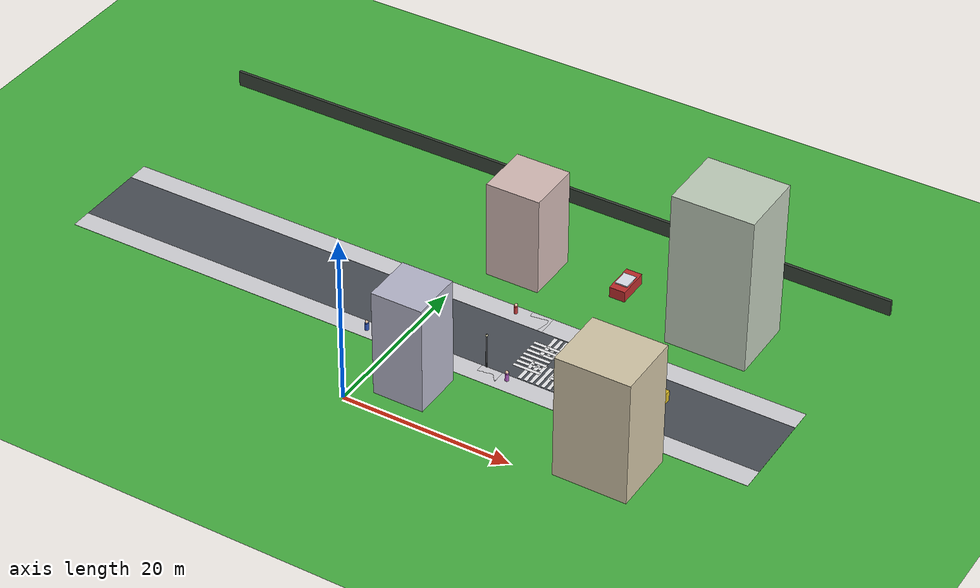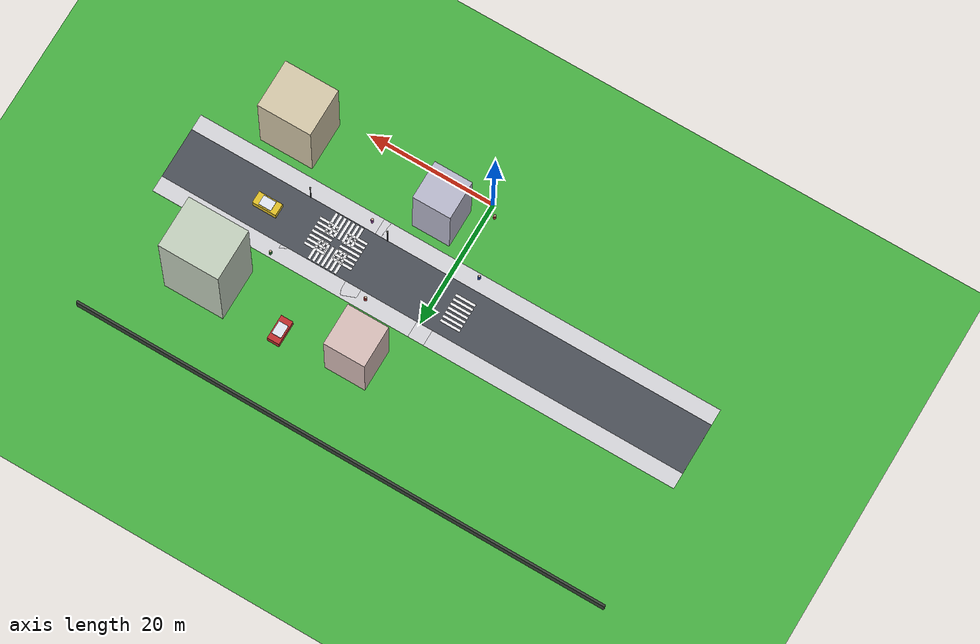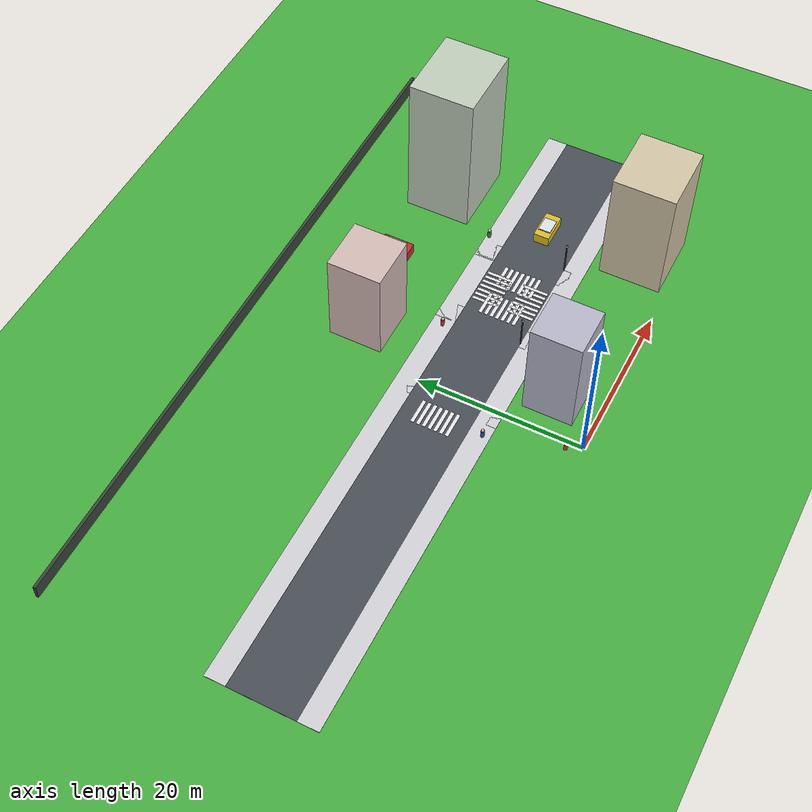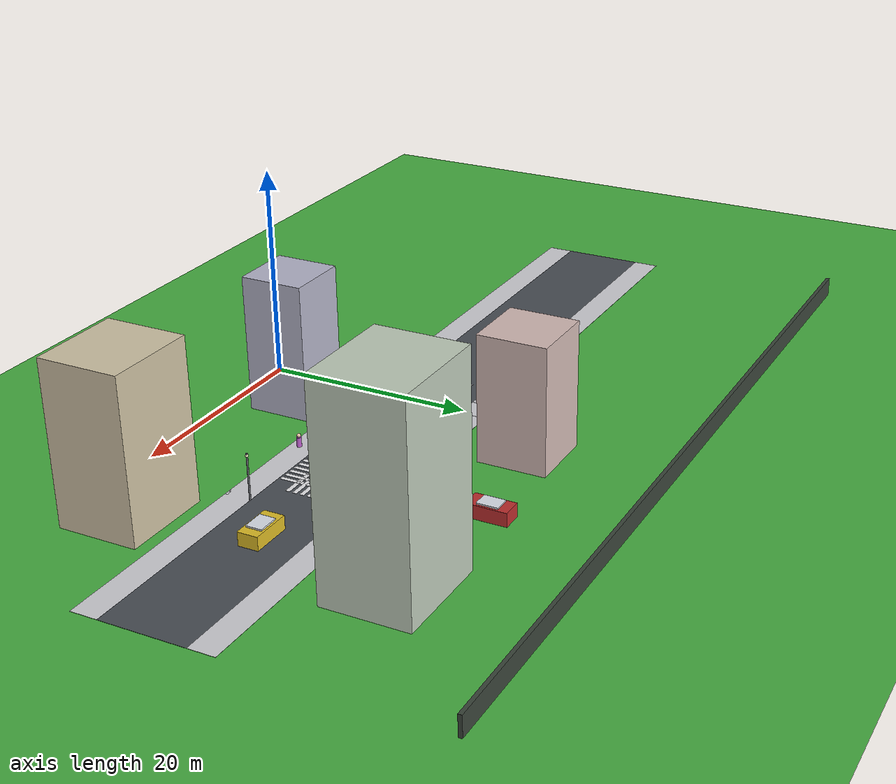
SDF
<sdf version="1.9">
 <world name="city_second">
  <model name="ground_plane">
   <static>true</static>
   <link name="link">
    <collision name="collision">
     <geometry><plane><normal>0 0 1</normal><size>300 300</size></plane></geometry>
    </collision>
    <visual name="visual">
     <geometry><plane><normal>0 0 1</normal><size>300 300</size></plane></geometry>
     <material>
      <ambient>0.28 0.69 0.26 1</ambient>
      <diffuse>0.28 0.69 0.26 1</diffuse>
      <specular>0.03 0.03 0.03 1</specular>
     </material>
    </visual>
   </link>
  </model>
  <model name="road_h_2">
   <static>true</static>
   <pose>0 16.0 0.01 0 0 0.0</pose>
   <link name="link">
    <collision name="collision"><geometry><box><size>84 8.0 0.02</size></box></geometry></collision>
    <visual name="visual">
     <geometry><box><size>84 8.0 0.02</size></box></geometry>
     <material>
      <ambient>0.29 0.31 0.34 1</ambient>
      <diffuse>0.29 0.31 0.34 1</diffuse>
      <specular>0.03 0.03 0.03 1</specular>
     </material>
    </visual>
   </link>
  </model>
  <model name="sidewalk_h_2_south">
   <static>true</static>
   <pose>0 10.75 0.015 0 0 0.0</pose>
   <link name="link">
    <collision name="collision"><geometry><box><size>84 2.5 0.02</size></box></geometry></collision>
    <visual name="visual">
     <geometry><box><size>84 2.5 0.02</size></box></geometry>
     <material>
      <ambient>0.83 0.83 0.85 1</ambient>
      <diffuse>0.83 0.83 0.85 1</diffuse>
      <specular>0.03 0.03 0.03 1</specular>
     </material>
    </visual>
   </link>
  </model>
  <model name="sidewalk_h_2_north">
   <static>true</static>
   <pose>0 21.25 0.015 0 0 0.0</pose>
   <link name="link">
    <collision name="collision"><geometry><box><size>84 2.5 0.02</size></box></geometry></collision>
    <visual name="visual">
     <geometry><box><size>84 2.5 0.02</size></box></geometry>
     <material>
      <ambient>0.83 0.83 0.85 1</ambient>
      <diffuse>0.83 0.83 0.85 1</diffuse>
      <specular>0.03 0.03 0.03 1</specular>
     </material>
    </visual>
   </link>
  </model>
  <model name="corner_sidewalk_1_2_3">
   <static>true</static>
   <pose>-0.75 10.75 0.015 0 0 0.0</pose>
   <link name="link">
    <collision name="collision"><geometry><box><size>2.5 2.5 0.02</size></box></geometry></collision>
    <visual name="visual">
     <geometry><box><size>2.5 2.5 0.02</size></box></geometry>
     <material>
      <ambient>0.83 0.83 0.85 1</ambient>
      <diffuse>0.83 0.83 0.85 1</diffuse>
      <specular>0.03 0.03 0.03 1</specular>
     </material>
    </visual>
   </link>
  </model>
  <model name="corner_sidewalk_1_2_4">
   <static>true</static>
   <pose>-0.75 21.25 0.015 0 0 0.0</pose>
   <link name="link">
    <collision name="collision"><geometry><box><size>2.5 2.5 0.02</size></box></geometry></collision>
    <visual name="visual">
     <geometry><box><size>2.5 2.5 0.02</size></box></geometry>
     <material>
      <ambient>0.83 0.83 0.85 1</ambient>
      <diffuse>0.83 0.83 0.85 1</diffuse>
      <specular>0.03 0.03 0.03 1</specular>
     </material>
    </visual>
   </link>
  </model>
  <model name="corner_sidewalk_2_2_1">
   <static>true</static>
   <pose>10.75 10.75 0.015 0 0 0.0</pose>
   <link name="link">
    <collision name="collision"><geometry><box><size>2.5 2.5 0.02</size></box></geometry></collision>
    <visual name="visual">
     <geometry><box><size>2.5 2.5 0.02</size></box></geometry>
     <material>
      <ambient>0.83 0.83 0.85 1</ambient>
      <diffuse>0.83 0.83 0.85 1</diffuse>
      <specular>0.03 0.03 0.03 1</specular>
     </material>
    </visual>
   </link>
  </model>
  <model name="corner_sidewalk_2_2_2">
   <static>true</static>
   <pose>10.75 21.25 0.015 0 0 0.0</pose>
   <link name="link">
    <collision name="collision"><geometry><box><size>2.5 2.5 0.02</size></box></geometry></collision>
    <visual name="visual">
     <geometry><box><size>2.5 2.5 0.02</size></box></geometry>
     <material>
      <ambient>0.83 0.83 0.85 1</ambient>
      <diffuse>0.83 0.83 0.85 1</diffuse>
      <specular>0.03 0.03 0.03 1</specular>
     </material>
    </visual>
   </link>
  </model>
  <model name="corner_sidewalk_2_2_3">
   <static>true</static>
   <pose>21.25 10.75 0.015 0 0 0.0</pose>
   <link name="link">
    <collision name="collision"><geometry><box><size>2.5 2.5 0.02</size></box></geometry></collision>
    <visual name="visual">
     <geometry><box><size>2.5 2.5 0.02</size></box></geometry>
     <material>
      <ambient>0.83 0.83 0.85 1</ambient>
      <diffuse>0.83 0.83 0.85 1</diffuse>
      <specular>0.03 0.03 0.03 1</specular>
     </material>
    </visual>
   </link>
  </model>
  <model name="corner_sidewalk_2_2_4">
   <static>true</static>
   <pose>21.25 21.25 0.015 0 0 0.0</pose>
   <link name="link">
    <collision name="collision"><geometry><box><size>2.5 2.5 0.02</size></box></geometry></collision>
    <visual name="visual">
     <geometry><box><size>2.5 2.5 0.02</size></box></geometry>
     <material>
      <ambient>0.83 0.83 0.85 1</ambient>
      <diffuse>0.83 0.83 0.85 1</diffuse>
      <specular>0.03 0.03 0.03 1</specular>
     </material>
    </visual>
   </link>
  </model>
  <model name="crosswalk_v_1_2_east_1">
   <static>true</static>
   <pose>-3.75 13.9 0.017 0 0 0.0</pose>
   <link name="link">
    <collision name="collision"><geometry><box><size>3.2 0.42 0.01</size></box></geometry></collision>
    <visual name="visual">
     <geometry><box><size>3.2 0.42 0.01</size></box></geometry>
     <material>
      <ambient>0.92 0.92 0.93 1</ambient>
      <diffuse>0.92 0.92 0.93 1</diffuse>
      <specular>0.03 0.03 0.03 1</specular>
     </material>
    </visual>
   </link>
  </model>
  <model name="crosswalk_v_1_2_east_2">
   <static>true</static>
   <pose>-3.75 14.6 0.017 0 0 0.0</pose>
   <link name="link">
    <collision name="collision"><geometry><box><size>3.2 0.42 0.01</size></box></geometry></collision>
    <visual name="visual">
     <geometry><box><size>3.2 0.42 0.01</size></box></geometry>
     <material>
      <ambient>0.92 0.92 0.93 1</ambient>
      <diffuse>0.92 0.92 0.93 1</diffuse>
      <specular>0.03 0.03 0.03 1</specular>
     </material>
    </visual>
   </link>
  </model>
  <model name="crosswalk_v_1_2_east_3">
   <static>true</static>
   <pose>-3.75 15.3 0.017 0 0 0.0</pose>
   <link name="link">
    <collision name="collision"><geometry><box><size>3.2 0.42 0.01</size></box></geometry></collision>
    <visual name="visual">
     <geometry><box><size>3.2 0.42 0.01</size></box></geometry>
     <material>
      <ambient>0.92 0.92 0.93 1</ambient>
      <diffuse>0.92 0.92 0.93 1</diffuse>
      <specular>0.03 0.03 0.03 1</specular>
     </material>
    </visual>
   </link>
  </model>
  <model name="crosswalk_v_1_2_east_4">
   <static>true</static>
   <pose>-3.75 16.0 0.017 0 0 0.0</pose>
   <link name="link">
    <collision name="collision"><geometry><box><size>3.2 0.42 0.01</size></box></geometry></collision>
    <visual name="visual">
     <geometry><box><size>3.2 0.42 0.01</size></box></geometry>
     <material>
      <ambient>0.92 0.92 0.93 1</ambient>
      <diffuse>0.92 0.92 0.93 1</diffuse>
      <specular>0.03 0.03 0.03 1</specular>
     </material>
    </visual>
   </link>
  </model>
  <model name="crosswalk_v_1_2_east_5">
   <static>true</static>
   <pose>-3.75 16.7 0.017 0 0 0.0</pose>
   <link name="link">
    <collision name="collision"><geometry><box><size>3.2 0.42 0.01</size></box></geometry></collision>
    <visual name="visual">
     <geometry><box><size>3.2 0.42 0.01</size></box></geometry>
     <material>
      <ambient>0.92 0.92 0.93 1</ambient>
      <diffuse>0.92 0.92 0.93 1</diffuse>
      <specular>0.03 0.03 0.03 1</specular>
     </material>
    </visual>
   </link>
  </model>
  <model name="crosswalk_v_1_2_east_6">
   <static>true</static>
   <pose>-3.75 17.4 0.017 0 0 0.0</pose>
   <link name="link">
    <collision name="collision"><geometry><box><size>3.2 0.42 0.01</size></box></geometry></collision>
    <visual name="visual">
     <geometry><box><size>3.2 0.42 0.01</size></box></geometry>
     <material>
      <ambient>0.92 0.92 0.93 1</ambient>
      <diffuse>0.92 0.92 0.93 1</diffuse>
      <specular>0.03 0.03 0.03 1</specular>
     </material>
    </visual>
   </link>
  </model>
  <model name="crosswalk_v_1_2_east_7">
   <static>true</static>
   <pose>-3.75 18.1 0.017 0 0 0.0</pose>
   <link name="link">
    <collision name="collision"><geometry><box><size>3.2 0.42 0.01</size></box></geometry></collision>
    <visual name="visual">
     <geometry><box><size>3.2 0.42 0.01</size></box></geometry>
     <material>
      <ambient>0.92 0.92 0.93 1</ambient>
      <diffuse>0.92 0.92 0.93 1</diffuse>
      <specular>0.03 0.03 0.03 1</specular>
     </material>
    </visual>
   </link>
  </model>
  <model name="crosswalk_h_2_2_south_1">
   <static>true</static>
   <pose>13.9 13.75 0.017 0 0 0.0</pose>
   <link name="link">
    <collision name="collision"><geometry><box><size>0.42 3.2 0.01</size></box></geometry></collision>
    <visual name="visual">
     <geometry><box><size>0.42 3.2 0.01</size></box></geometry>
     <material>
      <ambient>0.92 0.92 0.93 1</ambient>
      <diffuse>0.92 0.92 0.93 1</diffuse>
      <specular>0.03 0.03 0.03 1</specular>
     </material>
    </visual>
   </link>
  </model>
  <model name="crosswalk_h_2_2_south_2">
   <static>true</static>
   <pose>14.6 13.75 0.017 0 0 0.0</pose>
   <link name="link">
    <collision name="collision"><geometry><box><size>0.42 3.2 0.01</size></box></geometry></collision>
    <visual name="visual">
     <geometry><box><size>0.42 3.2 0.01</size></box></geometry>
     <material>
      <ambient>0.92 0.92 0.93 1</ambient>
      <diffuse>0.92 0.92 0.93 1</diffuse>
      <specular>0.03 0.03 0.03 1</specular>
     </material>
    </visual>
   </link>
  </model>
  <model name="crosswalk_h_2_2_south_3">
   <static>true</static>
   <pose>15.3 13.75 0.017 0 0 0.0</pose>
   <link name="link">
    <collision name="collision"><geometry><box><size>0.42 3.2 0.01</size></box></geometry></collision>
    <visual name="visual">
     <geometry><box><size>0.42 3.2 0.01</size></box></geometry>
     <material>
      <ambient>0.92 0.92 0.93 1</ambient>
      <diffuse>0.92 0.92 0.93 1</diffuse>
      <specular>0.03 0.03 0.03 1</specular>
     </material>
    </visual>
   </link>
  </model>
  <model name="crosswalk_h_2_2_south_4">
   <static>true</static>
   <pose>16.0 13.75 0.017 0 0 0.0</pose>
   <link name="link">
    <collision name="collision"><geometry><box><size>0.42 3.2 0.01</size></box></geometry></collision>
    <visual name="visual">
     <geometry><box><size>0.42 3.2 0.01</size></box></geometry>
     <material>
      <ambient>0.92 0.92 0.93 1</ambient>
      <diffuse>0.92 0.92 0.93 1</diffuse>
      <specular>0.03 0.03 0.03 1</specular>
     </material>
    </visual>
   </link>
  </model>
  <model name="crosswalk_h_2_2_south_5">
   <static>true</static>
   <pose>16.7 13.75 0.017 0 0 0.0</pose>
   <link name="link">
    <collision name="collision"><geometry><box><size>0.42 3.2 0.01</size></box></geometry></collision>
    <visual name="visual">
     <geometry><box><size>0.42 3.2 0.01</size></box></geometry>
     <material>
      <ambient>0.92 0.92 0.93 1</ambient>
      <diffuse>0.92 0.92 0.93 1</diffuse>
      <specular>0.03 0.03 0.03 1</specular>
     </material>
    </visual>
   </link>
  </model>
  <model name="crosswalk_h_2_2_south_6">
   <static>true</static>
   <pose>17.4 13.75 0.017 0 0 0.0</pose>
   <link name="link">
    <collision name="collision"><geometry><box><size>0.42 3.2 0.01</size></box></geometry></collision>
    <visual name="visual">
     <geometry><box><size>0.42 3.2 0.01</size></box></geometry>
     <material>
      <ambient>0.92 0.92 0.93 1</ambient>
      <diffuse>0.92 0.92 0.93 1</diffuse>
      <specular>0.03 0.03 0.03 1</specular>
     </material>
    </visual>
   </link>
  </model>
  <model name="crosswalk_h_2_2_south_7">
   <static>true</static>
   <pose>18.1 13.75 0.017 0 0 0.0</pose>
   <link name="link">
    <collision name="collision"><geometry><box><size>0.42 3.2 0.01</size></box></geometry></collision>
    <visual name="visual">
     <geometry><box><size>0.42 3.2 0.01</size></box></geometry>
     <material>
      <ambient>0.92 0.92 0.93 1</ambient>
      <diffuse>0.92 0.92 0.93 1</diffuse>
      <specular>0.03 0.03 0.03 1</specular>
     </material>
    </visual>
   </link>
  </model>
  <model name="crosswalk_h_2_2_north_1">
   <static>true</static>
   <pose>13.9 18.25 0.017 0 0 0.0</pose>
   <link name="link">
    <collision name="collision"><geometry><box><size>0.42 3.2 0.01</size></box></geometry></collision>
    <visual name="visual">
     <geometry><box><size>0.42 3.2 0.01</size></box></geometry>
     <material>
      <ambient>0.92 0.92 0.93 1</ambient>
      <diffuse>0.92 0.92 0.93 1</diffuse>
      <specular>0.03 0.03 0.03 1</specular>
     </material>
    </visual>
   </link>
  </model>
  <model name="crosswalk_h_2_2_north_2">
   <static>true</static>
   <pose>14.6 18.25 0.017 0 0 0.0</pose>
   <link name="link">
    <collision name="collision"><geometry><box><size>0.42 3.2 0.01</size></box></geometry></collision>
    <visual name="visual">
     <geometry><box><size>0.42 3.2 0.01</size></box></geometry>
     <material>
      <ambient>0.92 0.92 0.93 1</ambient>
      <diffuse>0.92 0.92 0.93 1</diffuse>
      <specular>0.03 0.03 0.03 1</specular>
     </material>
    </visual>
   </link>
  </model>
  <model name="crosswalk_h_2_2_north_3">
   <static>true</static>
   <pose>15.3 18.25 0.017 0 0 0.0</pose>
   <link name="link">
    <collision name="collision"><geometry><box><size>0.42 3.2 0.01</size></box></geometry></collision>
    <visual name="visual">
     <geometry><box><size>0.42 3.2 0.01</size></box></geometry>
     <material>
      <ambient>0.92 0.92 0.93 1</ambient>
      <diffuse>0.92 0.92 0.93 1</diffuse>
      <specular>0.03 0.03 0.03 1</specular>
     </material>
    </visual>
   </link>
  </model>
  <model name="crosswalk_h_2_2_north_4">
   <static>true</static>
   <pose>16.0 18.25 0.017 0 0 0.0</pose>
   <link name="link">
    <collision name="collision"><geometry><box><size>0.42 3.2 0.01</size></box></geometry></collision>
    <visual name="visual">
     <geometry><box><size>0.42 3.2 0.01</size></box></geometry>
     <material>
      <ambient>0.92 0.92 0.93 1</ambient>
      <diffuse>0.92 0.92 0.93 1</diffuse>
      <specular>0.03 0.03 0.03 1</specular>
     </material>
    </visual>
   </link>
  </model>
  <model name="crosswalk_h_2_2_north_5">
   <static>true</static>
   <pose>16.7 18.25 0.017 0 0 0.0</pose>
   <link name="link">
    <collision name="collision"><geometry><box><size>0.42 3.2 0.01</size></box></geometry></collision>
    <visual name="visual">
     <geometry><box><size>0.42 3.2 0.01</size></box></geometry>
     <material>
      <ambient>0.92 0.92 0.93 1</ambient>
      <diffuse>0.92 0.92 0.93 1</diffuse>
      <specular>0.03 0.03 0.03 1</specular>
     </material>
    </visual>
   </link>
  </model>
  <model name="crosswalk_h_2_2_north_6">
   <static>true</static>
   <pose>17.4 18.25 0.017 0 0 0.0</pose>
   <link name="link">
    <collision name="collision"><geometry><box><size>0.42 3.2 0.01</size></box></geometry></collision>
    <visual name="visual">
     <geometry><box><size>0.42 3.2 0.01</size></box></geometry>
     <material>
      <ambient>0.92 0.92 0.93 1</ambient>
      <diffuse>0.92 0.92 0.93 1</diffuse>
      <specular>0.03 0.03 0.03 1</specular>
     </material>
    </visual>
   </link>
  </model>
  <model name="crosswalk_h_2_2_north_7">
   <static>true</static>
   <pose>18.1 18.25 0.017 0 0 0.0</pose>
   <link name="link">
    <collision name="collision"><geometry><box><size>0.42 3.2 0.01</size></box></geometry></collision>
    <visual name="visual">
     <geometry><box><size>0.42 3.2 0.01</size></box></geometry>
     <material>
      <ambient>0.92 0.92 0.93 1</ambient>
      <diffuse>0.92 0.92 0.93 1</diffuse>
      <specular>0.03 0.03 0.03 1</specular>
     </material>
    </visual>
   </link>
  </model>
  <model name="crosswalk_v_2_2_west_1">
   <static>true</static>
   <pose>13.75 13.9 0.017 0 0 0.0</pose>
   <link name="link">
    <collision name="collision"><geometry><box><size>3.2 0.42 0.01</size></box></geometry></collision>
    <visual name="visual">
     <geometry><box><size>3.2 0.42 0.01</size></box></geometry>
     <material>
      <ambient>0.92 0.92 0.93 1</ambient>
      <diffuse>0.92 0.92 0.93 1</diffuse>
      <specular>0.03 0.03 0.03 1</specular>
     </material>
    </visual>
   </link>
  </model>
  <model name="crosswalk_v_2_2_west_2">
   <static>true</static>
   <pose>13.75 14.6 0.017 0 0 0.0</pose>
   <link name="link">
    <collision name="collision"><geometry><box><size>3.2 0.42 0.01</size></box></geometry></collision>
    <visual name="visual">
     <geometry><box><size>3.2 0.42 0.01</size></box></geometry>
     <material>
      <ambient>0.92 0.92 0.93 1</ambient>
      <diffuse>0.92 0.92 0.93 1</diffuse>
      <specular>0.03 0.03 0.03 1</specular>
     </material>
    </visual>
   </link>
  </model>
  <model name="crosswalk_v_2_2_west_3">
   <static>true</static>
   <pose>13.75 15.3 0.017 0 0 0.0</pose>
   <link name="link">
    <collision name="collision"><geometry><box><size>3.2 0.42 0.01</size></box></geometry></collision>
    <visual name="visual">
     <geometry><box><size>3.2 0.42 0.01</size></box></geometry>
     <material>
      <ambient>0.92 0.92 0.93 1</ambient>
      <diffuse>0.92 0.92 0.93 1</diffuse>
      <specular>0.03 0.03 0.03 1</specular>
     </material>
    </visual>
   </link>
  </model>
  <model name="crosswalk_v_2_2_west_4">
   <static>true</static>
   <pose>13.75 16.0 0.017 0 0 0.0</pose>
   <link name="link">
    <collision name="collision"><geometry><box><size>3.2 0.42 0.01</size></box></geometry></collision>
    <visual name="visual">
     <geometry><box><size>3.2 0.42 0.01</size></box></geometry>
     <material>
      <ambient>0.92 0.92 0.93 1</ambient>
      <diffuse>0.92 0.92 0.93 1</diffuse>
      <specular>0.03 0.03 0.03 1</specular>
     </material>
    </visual>
   </link>
  </model>
  <model name="crosswalk_v_2_2_west_5">
   <static>true</static>
   <pose>13.75 16.7 0.017 0 0 0.0</pose>
   <link name="link">
    <collision name="collision"><geometry><box><size>3.2 0.42 0.01</size></box></geometry></collision>
    <visual name="visual">
     <geometry><box><size>3.2 0.42 0.01</size></box></geometry>
     <material>
      <ambient>0.92 0.92 0.93 1</ambient>
      <diffuse>0.92 0.92 0.93 1</diffuse>
      <specular>0.03 0.03 0.03 1</specular>
     </material>
    </visual>
   </link>
  </model>
  <model name="crosswalk_v_2_2_west_6">
   <static>true</static>
   <pose>13.75 17.4 0.017 0 0 0.0</pose>
   <link name="link">
    <collision name="collision"><geometry><box><size>3.2 0.42 0.01</size></box></geometry></collision>
    <visual name="visual">
     <geometry><box><size>3.2 0.42 0.01</size></box></geometry>
     <material>
      <ambient>0.92 0.92 0.93 1</ambient>
      <diffuse>0.92 0.92 0.93 1</diffuse>
      <specular>0.03 0.03 0.03 1</specular>
     </material>
    </visual>
   </link>
  </model>
  <model name="crosswalk_v_2_2_west_7">
   <static>true</static>
   <pose>13.75 18.1 0.017 0 0 0.0</pose>
   <link name="link">
    <collision name="collision"><geometry><box><size>3.2 0.42 0.01</size></box></geometry></collision>
    <visual name="visual">
     <geometry><box><size>3.2 0.42 0.01</size></box></geometry>
     <material>
      <ambient>0.92 0.92 0.93 1</ambient>
      <diffuse>0.92 0.92 0.93 1</diffuse>
      <specular>0.03 0.03 0.03 1</specular>
     </material>
    </visual>
   </link>
  </model>
  <model name="crosswalk_v_2_2_east_1">
   <static>true</static>
   <pose>18.25 13.9 0.017 0 0 0.0</pose>
   <link name="link">
    <collision name="collision"><geometry><box><size>3.2 0.42 0.01</size></box></geometry></collision>
    <visual name="visual">
     <geometry><box><size>3.2 0.42 0.01</size></box></geometry>
     <material>
      <ambient>0.92 0.92 0.93 1</ambient>
      <diffuse>0.92 0.92 0.93 1</diffuse>
      <specular>0.03 0.03 0.03 1</specular>
     </material>
    </visual>
   </link>
  </model>
  <model name="crosswalk_v_2_2_east_2">
   <static>true</static>
   <pose>18.25 14.6 0.017 0 0 0.0</pose>
   <link name="link">
    <collision name="collision"><geometry><box><size>3.2 0.42 0.01</size></box></geometry></collision>
    <visual name="visual">
     <geometry><box><size>3.2 0.42 0.01</size></box></geometry>
     <material>
      <ambient>0.92 0.92 0.93 1</ambient>
      <diffuse>0.92 0.92 0.93 1</diffuse>
      <specular>0.03 0.03 0.03 1</specular>
     </material>
    </visual>
   </link>
  </model>
  <model name="crosswalk_v_2_2_east_3">
   <static>true</static>
   <pose>18.25 15.3 0.017 0 0 0.0</pose>
   <link name="link">
    <collision name="collision"><geometry><box><size>3.2 0.42 0.01</size></box></geometry></collision>
    <visual name="visual">
     <geometry><box><size>3.2 0.42 0.01</size></box></geometry>
     <material>
      <ambient>0.92 0.92 0.93 1</ambient>
      <diffuse>0.92 0.92 0.93 1</diffuse>
      <specular>0.03 0.03 0.03 1</specular>
     </material>
    </visual>
   </link>
  </model>
  <model name="crosswalk_v_2_2_east_4">
   <static>true</static>
   <pose>18.25 16.0 0.017 0 0 0.0</pose>
   <link name="link">
    <collision name="collision"><geometry><box><size>3.2 0.42 0.01</size></box></geometry></collision>
    <visual name="visual">
     <geometry><box><size>3.2 0.42 0.01</size></box></geometry>
     <material>
      <ambient>0.92 0.92 0.93 1</ambient>
      <diffuse>0.92 0.92 0.93 1</diffuse>
      <specular>0.03 0.03 0.03 1</specular>
     </material>
    </visual>
   </link>
  </model>
  <model name="crosswalk_v_2_2_east_5">
   <static>true</static>
   <pose>18.25 16.7 0.017 0 0 0.0</pose>
   <link name="link">
    <collision name="collision"><geometry><box><size>3.2 0.42 0.01</size></box></geometry></collision>
    <visual name="visual">
     <geometry><box><size>3.2 0.42 0.01</size></box></geometry>
     <material>
      <ambient>0.92 0.92 0.93 1</ambient>
      <diffuse>0.92 0.92 0.93 1</diffuse>
      <specular>0.03 0.03 0.03 1</specular>
     </material>
    </visual>
   </link>
  </model>
  <model name="crosswalk_v_2_2_east_6">
   <static>true</static>
   <pose>18.25 17.4 0.017 0 0 0.0</pose>
   <link name="link">
    <collision name="collision"><geometry><box><size>3.2 0.42 0.01</size></box></geometry></collision>
    <visual name="visual">
     <geometry><box><size>3.2 0.42 0.01</size></box></geometry>
     <material>
      <ambient>0.92 0.92 0.93 1</ambient>
      <diffuse>0.92 0.92 0.93 1</diffuse>
      <specular>0.03 0.03 0.03 1</specular>
     </material>
    </visual>
   </link>
  </model>
  <model name="crosswalk_v_2_2_east_7">
   <static>true</static>
   <pose>18.25 18.1 0.017 0 0 0.0</pose>
   <link name="link">
    <collision name="collision"><geometry><box><size>3.2 0.42 0.01</size></box></geometry></collision>
    <visual name="visual">
     <geometry><box><size>3.2 0.42 0.01</size></box></geometry>
     <material>
      <ambient>0.92 0.92 0.93 1</ambient>
      <diffuse>0.92 0.92 0.93 1</diffuse>
      <specular>0.03 0.03 0.03 1</specular>
     </material>
    </visual>
   </link>
  </model>
  <model name="house_2_2">
   <static>true</static>
   <pose>5.2 5.3 6.5 0 0 0.0</pose>
   <link name="link">
    <collision name="collision"><geometry><box><size>6.0 6.0 13</size></box></geometry></collision>
    <visual name="visual">
     <geometry><box><size>6.0 6.0 13</size></box></geometry>
     <material>
      <ambient>0.72 0.72 0.8 1</ambient>
      <diffuse>0.72 0.72 0.8 1</diffuse>
      <specular>0.03 0.03 0.03 1</specular>
     </material>
    </visual>
   </link>
  </model>
  <model name="house_2_3">
   <static>true</static>
   <pose>28.7 4.6 7.5 0 0 0.0</pose>
   <link name="link">
    <collision name="collision"><geometry><box><size>8.5 7.5 15</size></box></geometry></collision>
    <visual name="visual">
     <geometry><box><size>8.5 7.5 15</size></box></geometry>
     <material>
      <ambient>0.83 0.78 0.66 1</ambient>
      <diffuse>0.83 0.78 0.66 1</diffuse>
      <specular>0.03 0.03 0.03 1</specular>
     </material>
    </visual>
   </link>
  </model>
  <model name="house_3_2">
   <static>true</static>
   <pose>4.8999999999999995 28.9 6.0 0 0 0.0</pose>
   <link name="link">
    <collision name="collision"><geometry><box><size>6.5 6.5 12</size></box></geometry></collision>
    <visual name="visual">
     <geometry><box><size>6.5 6.5 12</size></box></geometry>
     <material>
      <ambient>0.84 0.74 0.72 1</ambient>
      <diffuse>0.84 0.74 0.72 1</diffuse>
      <specular>0.03 0.03 0.03 1</specular>
     </material>
    </visual>
   </link>
  </model>
  <model name="house_3_3">
   <static>true</static>
   <pose>28.6 29.4 9.5 0 0 0.0</pose>
   <link name="link">
    <collision name="collision"><geometry><box><size>9.5 8.0 19</size></box></geometry></collision>
    <visual name="visual">
     <geometry><box><size>9.5 8.0 19</size></box></geometry>
     <material>
      <ambient>0.76 0.81 0.74 1</ambient>
      <diffuse>0.76 0.81 0.74 1</diffuse>
      <specular>0.03 0.03 0.03 1</specular>
     </material>
    </visual>
   </link>
  </model>
  <model name="car_3">
   <static>true</static>
   <pose>27.0 16.2 0.65 0 0 0.0</pose>
   <link name="link">
    <collision name="collision"><geometry><box><size>3.8 1.9 1.3</size></box></geometry></collision>
    <visual name="body">
     <geometry><box><size>3.8 1.9 1.3</size></box></geometry>
     <material>
      <ambient>0.88 0.75 0.15 1</ambient>
      <diffuse>0.88 0.75 0.15 1</diffuse>
      <specular>0.03 0.03 0.03 1</specular>
     </material>
    </visual>
    <visual name="roof">
     <pose>0 0 0.55 0 0 0</pose>
     <geometry><box><size>2.0 1.5 0.5</size></box></geometry>
     <material>
      <ambient>0.88 0.9 0.94 1</ambient>
      <diffuse>0.88 0.9 0.94 1</diffuse>
      <specular>0.03 0.03 0.03 1</specular>
     </material>
    </visual>
   </link>
  </model>
  <model name="car_6">
   <static>true</static>
   <pose>16.0 31.0 0.65 0 0 1.5707963267948966</pose>
   <link name="link">
    <collision name="collision"><geometry><box><size>3.8 1.9 1.3</size></box></geometry></collision>
    <visual name="body">
     <geometry><box><size>3.8 1.9 1.3</size></box></geometry>
     <material>
      <ambient>0.75 0.18 0.18 1</ambient>
      <diffuse>0.75 0.18 0.18 1</diffuse>
      <specular>0.03 0.03 0.03 1</specular>
     </material>
    </visual>
    <visual name="roof">
     <pose>0 0 0.55 0 0 0</pose>
     <geometry><box><size>2.0 1.5 0.5</size></box></geometry>
     <material>
      <ambient>0.88 0.9 0.94 1</ambient>
      <diffuse>0.88 0.9 0.94 1</diffuse>
      <specular>0.03 0.03 0.03 1</specular>
     </material>
    </visual>
   </link>
  </model>
  <model name="person_1">
   <static>true</static>
   <pose>-1.2 1.6 0 0 0 0.864</pose>
   <link name="link">
    <collision name="legs">
     <pose>0 0 0.45 0 0 0</pose>
     <geometry><cylinder><radius>0.18</radius><length>0.9</length></cylinder></geometry>
    </collision>
    <visual name="torso">
     <pose>0 0 0.85 0 0 0</pose>
     <geometry><cylinder><radius>0.22</radius><length>0.9</length></cylinder></geometry>
     <material>
      <ambient>0.82 0.25 0.25 1</ambient>
      <diffuse>0.82 0.25 0.25 1</diffuse>
      <specular>0.03 0.03 0.03 1</specular>
     </material>
    </visual>
    <visual name="head">
     <pose>0 0 1.45 0 0 0</pose>
     <geometry><sphere><radius>0.18</radius></sphere></geometry>
     <material>
      <ambient>0.92 0.78 0.66 1</ambient>
      <diffuse>0.92 0.78 0.66 1</diffuse>
      <specular>0.03 0.03 0.03 1</specular>
     </material>
    </visual>
   </link>
  </model>
  <model name="person_4">
   <static>true</static>
   <pose>13.2 10.8 0 0 0 -1.716</pose>
   <link name="link">
    <collision name="legs">
     <pose>0 0 0.45 0 0 0</pose>
     <geometry><cylinder><radius>0.18</radius><length>0.9</length></cylinder></geometry>
    </collision>
    <visual name="torso">
     <pose>0 0 0.85 0 0 0</pose>
     <geometry><cylinder><radius>0.22</radius><length>0.9</length></cylinder></geometry>
     <material>
      <ambient>0.72 0.36 0.78 1</ambient>
      <diffuse>0.72 0.36 0.78 1</diffuse>
      <specular>0.03 0.03 0.03 1</specular>
     </material>
    </visual>
    <visual name="head">
     <pose>0 0 1.45 0 0 0</pose>
     <geometry><sphere><radius>0.18</radius></sphere></geometry>
     <material>
      <ambient>0.92 0.78 0.66 1</ambient>
      <diffuse>0.92 0.78 0.66 1</diffuse>
      <specular>0.03 0.03 0.03 1</specular>
     </material>
    </visual>
   </link>
  </model>
  <model name="person_7">
   <static>true</static>
   <pose>8.2 21.0 0 0 0 2.432</pose>
   <link name="link">
    <collision name="legs">
     <pose>0 0 0.45 0 0 0</pose>
     <geometry><cylinder><radius>0.18</radius><length>0.9</length></cylinder></geometry>
    </collision>
    <visual name="torso">
     <pose>0 0 0.85 0 0 0</pose>
     <geometry><cylinder><radius>0.22</radius><length>0.9</length></cylinder></geometry>
     <material>
      <ambient>0.82 0.25 0.25 1</ambient>
      <diffuse>0.82 0.25 0.25 1</diffuse>
      <specular>0.03 0.03 0.03 1</specular>
     </material>
    </visual>
    <visual name="head">
     <pose>0 0 1.45 0 0 0</pose>
     <geometry><sphere><radius>0.18</radius></sphere></geometry>
     <material>
      <ambient>0.92 0.78 0.66 1</ambient>
      <diffuse>0.92 0.78 0.66 1</diffuse>
      <specular>0.03 0.03 0.03 1</specular>
     </material>
    </visual>
   </link>
  </model>
  <model name="person_8">
   <static>true</static>
   <pose>-3.8 10.3 0 0 0 -2.561</pose>
   <link name="link">
    <collision name="legs">
     <pose>0 0 0.45 0 0 0</pose>
     <geometry><cylinder><radius>0.18</radius><length>0.9</length></cylinder></geometry>
    </collision>
    <visual name="torso">
     <pose>0 0 0.85 0 0 0</pose>
     <geometry><cylinder><radius>0.22</radius><length>0.9</length></cylinder></geometry>
     <material>
      <ambient>0.2 0.36 0.78 1</ambient>
      <diffuse>0.2 0.36 0.78 1</diffuse>
      <specular>0.03 0.03 0.03 1</specular>
     </material>
    </visual>
    <visual name="head">
     <pose>0 0 1.45 0 0 0</pose>
     <geometry><sphere><radius>0.18</radius></sphere></geometry>
     <material>
      <ambient>0.92 0.78 0.66 1</ambient>
      <diffuse>0.92 0.78 0.66 1</diffuse>
      <specular>0.03 0.03 0.03 1</specular>
     </material>
    </visual>
   </link>
  </model>
  <model name="person_9">
   <static>true</static>
   <pose>23.0 22.0 0 0 0 -0.484</pose>
   <link name="link">
    <collision name="legs">
     <pose>0 0 0.45 0 0 0</pose>
     <geometry><cylinder><radius>0.18</radius><length>0.9</length></cylinder></geometry>
    </collision>
    <visual name="torso">
     <pose>0 0 0.85 0 0 0</pose>
     <geometry><cylinder><radius>0.22</radius><length>0.9</length></cylinder></geometry>
     <material>
      <ambient>0.21 0.6 0.28 1</ambient>
      <diffuse>0.21 0.6 0.28 1</diffuse>
      <specular>0.03 0.03 0.03 1</specular>
     </material>
    </visual>
    <visual name="head">
     <pose>0 0 1.45 0 0 0</pose>
     <geometry><sphere><radius>0.18</radius></sphere></geometry>
     <material>
      <ambient>0.92 0.78 0.66 1</ambient>
      <diffuse>0.92 0.78 0.66 1</diffuse>
      <specular>0.03 0.03 0.03 1</specular>
     </material>
    </visual>
   </link>
  </model>
  <model name="lamp_6">
   <static>true</static>
   <pose>10.0 12.0 2.2 0 0 0</pose>
   <link name="link">
    <collision name="collision">
     <geometry><cylinder><radius>0.08</radius><length>4.4</length></cylinder></geometry>
    </collision>
    <visual name="pole">
     <geometry><cylinder><radius>0.08</radius><length>4.4</length></cylinder></geometry>
     <material>
      <ambient>0.35 0.36 0.38 1</ambient>
      <diffuse>0.35 0.36 0.38 1</diffuse>
      <specular>0.03 0.03 0.03 1</specular>
     </material>
    </visual>
    <visual name="lamp_head">
     <pose>0 0 2.0 0 0 0</pose>
     <geometry><sphere><radius>0.14</radius></sphere></geometry>
     <material>
      <ambient>0.96 0.94 0.78 1</ambient>
      <diffuse>0.96 0.94 0.78 1</diffuse>
      <specular>0.03 0.03 0.03 1</specular>
     </material>
    </visual>
   </link>
  </model>
  <model name="lamp_8">
   <static>true</static>
   <pose>22.5 12.0 2.2 0 0 0</pose>
   <link name="link">
    <collision name="collision">
     <geometry><cylinder><radius>0.08</radius><length>4.4</length></cylinder></geometry>
    </collision>
    <visual name="pole">
     <geometry><cylinder><radius>0.08</radius><length>4.4</length></cylinder></geometry>
     <material>
      <ambient>0.35 0.36 0.38 1</ambient>
      <diffuse>0.35 0.36 0.38 1</diffuse>
      <specular>0.03 0.03 0.03 1</specular>
     </material>
    </visual>
    <visual name="lamp_head">
     <pose>0 0 2.0 0 0 0</pose>
     <geometry><sphere><radius>0.14</radius></sphere></geometry>
     <material>
      <ambient>0.96 0.94 0.78 1</ambient>
      <diffuse>0.96 0.94 0.78 1</diffuse>
      <specular>0.03 0.03 0.03 1</specular>
     </material>
    </visual>
   </link>
  </model>
  <model name="fence_north">
   <static>true</static>
   <pose>0 42.0 0.95 0 0 0.0</pose>
   <link name="link">
    <collision name="collision"><geometry><box><size>84.5 0.35 1.9</size></box></geometry></collision>
    <visual name="visual">
     <geometry><box><size>84.5 0.35 1.9</size></box></geometry>
     <material>
      <ambient>0.23 0.27 0.23 1</ambient>
      <diffuse>0.23 0.27 0.23 1</diffuse>
      <specular>0.03 0.03 0.03 1</specular>
     </material>
    </visual>
   </link>
  </model>
 </world>
</sdf>
